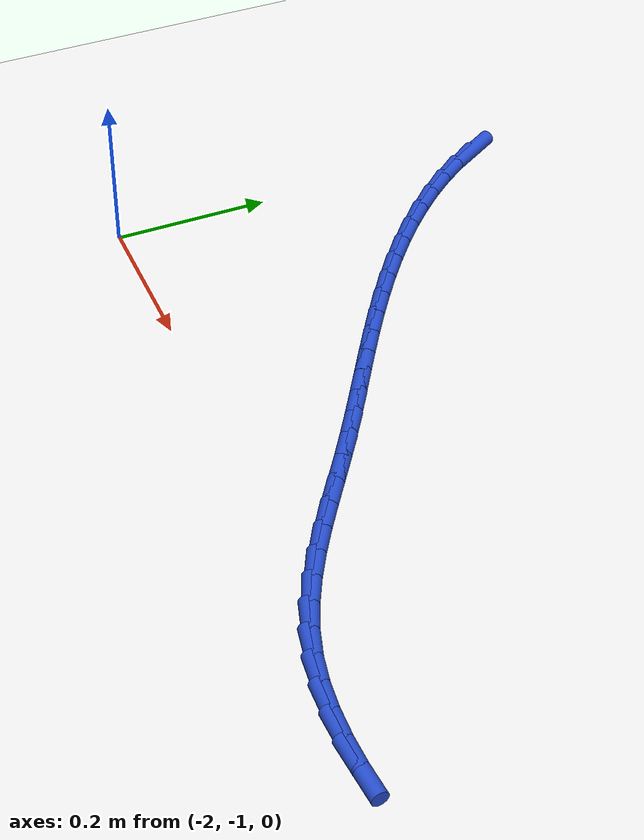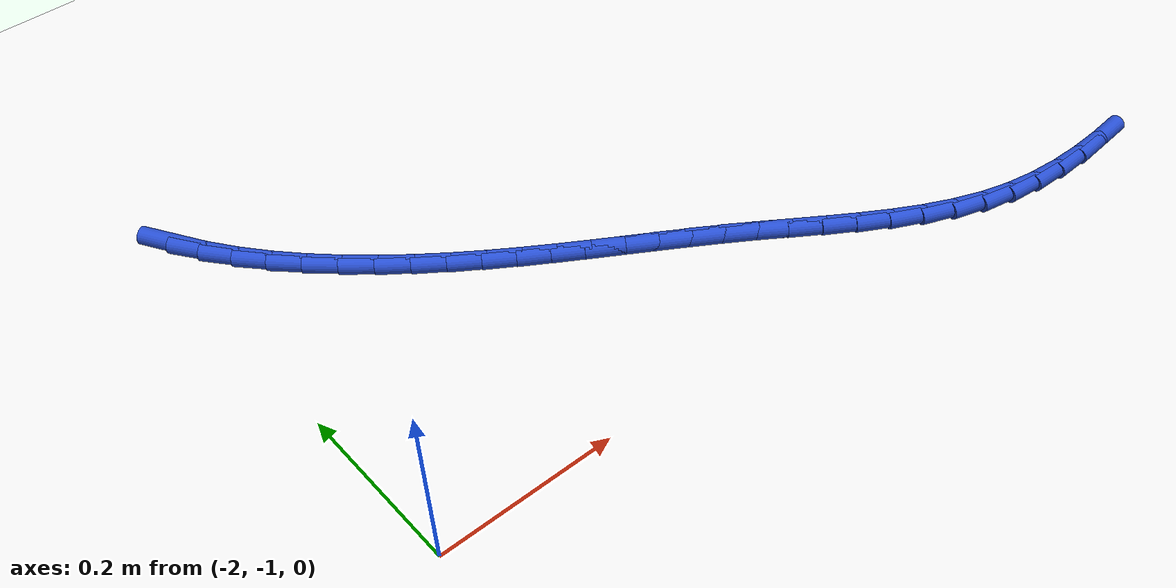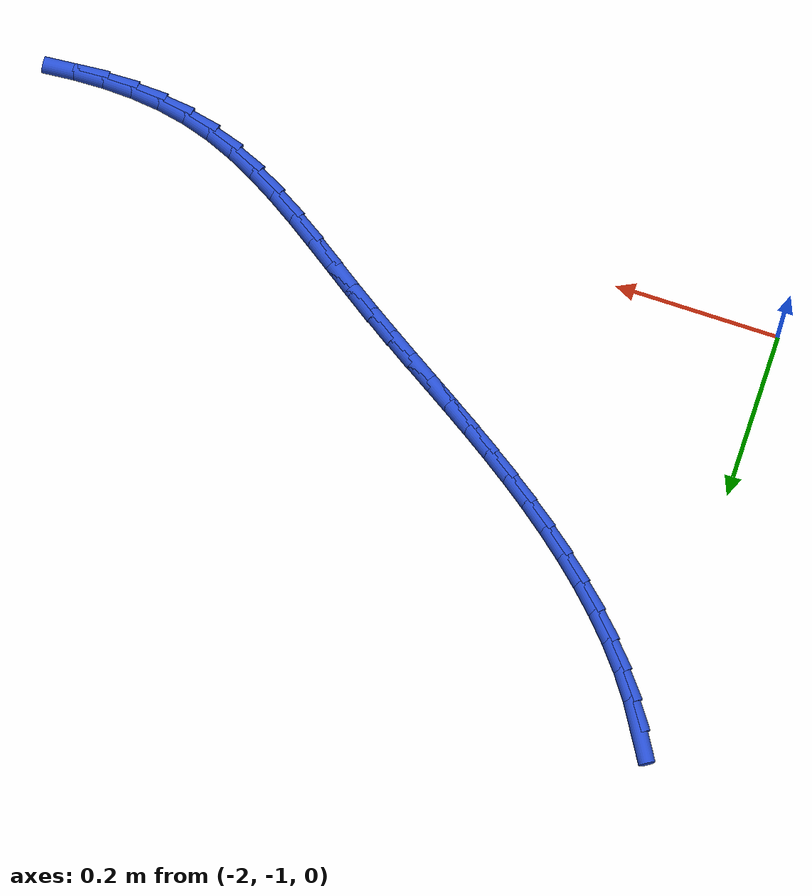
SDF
<sdf version="1.6">
 <world name="default">
  <model name="ground_plane">
   <static>1</static>
   <link name="link">
    <collision name="collision">
     <geometry><plane><normal>0 0 1</normal><size>100 100</size></plane></geometry>
     <surface><friction><ode><mu>100</mu><mu2>50</mu2></ode></friction></surface>
    </collision>
    <visual name="visual">
     <cast_shadows>0</cast_shadows>
     <geometry><plane><normal>0 0 1</normal><size>100 100</size></plane></geometry>
     <material>
      <script><uri>file://media/materials/scripts/gazebo.material</uri><name>Gazebo/WhiteGlow</name></script>
     </material>
    </visual>
   </link>
  </model>
  <model name="line">
   <link name="link_105">
    <pose>-1.9854136381828291 -0.5013025602565664 0.01 0 1.57 -1.0278930306244936</pose>
    <collision name="collision">
     <geometry><cylinder><radius>0.01</radius><length>0.08</length></cylinder></geometry>
    </collision>
    <visual name="visual">
     <material>
      <script><name>Gazebo/Blue</name><uri>file://media/materials/scripts/gazebo.material</uri></script>
     </material>
     <geometry><cylinder><radius>0.01</radius><length>0.08</length></cylinder></geometry>
    </visual>
   </link>
   <link name="link_106">
    <pose>-1.9668358680596336 -0.5320919092841816 0.01 0 1.57 -0.9518600899607216</pose>
    <collision name="collision">
     <geometry><cylinder><radius>0.01</radius><length>0.08</length></cylinder></geometry>
    </collision>
    <visual name="visual">
     <material>
      <script><name>Gazebo/Blue</name><uri>file://media/materials/scripts/gazebo.material</uri></script>
     </material>
     <geometry><cylinder><radius>0.01</radius><length>0.08</length></cylinder></geometry>
    </visual>
   </link>
   <link name="link_107">
    <pose>-1.9456504953854847 -0.5618339349138195 0.01 0 1.57 -0.8850721465943859</pose>
    <collision name="collision">
     <geometry><cylinder><radius>0.01</radius><length>0.08</length></cylinder></geometry>
    </collision>
    <visual name="visual">
     <material>
      <script><name>Gazebo/Blue</name><uri>file://media/materials/scripts/gazebo.material</uri></script>
     </material>
     <geometry><cylinder><radius>0.01</radius><length>0.08</length></cylinder></geometry>
    </visual>
   </link>
   <link name="link_108">
    <pose>-1.9221911971435446 -0.5905067224094889 0.01 0 1.57 -0.8265609908895764</pose>
    <collision name="collision">
     <geometry><cylinder><radius>0.01</radius><length>0.08</length></cylinder></geometry>
    </collision>
    <visual name="visual">
     <material>
      <script><name>Gazebo/Blue</name><uri>file://media/materials/scripts/gazebo.material</uri></script>
     </material>
     <geometry><cylinder><radius>0.01</radius><length>0.08</length></cylinder></geometry>
    </visual>
   </link>
   <link name="link_109">
    <pose>-1.8967916503169737 -0.6180883570351988 0.01 0 1.57 -0.7753460556000099</pose>
    <collision name="collision">
     <geometry><cylinder><radius>0.01</radius><length>0.08</length></cylinder></geometry>
    </collision>
    <visual name="visual">
     <material>
      <script><name>Gazebo/Blue</name><uri>file://media/materials/scripts/gazebo.material</uri></script>
     </material>
     <geometry><cylinder><radius>0.01</radius><length>0.08</length></cylinder></geometry>
    </visual>
   </link>
   <link name="link_110">
    <pose>-1.8697855318889345 -0.6445569240549565 0.01 0 1.57 -0.7305142285117678</pose>
    <collision name="collision">
     <geometry><cylinder><radius>0.01</radius><length>0.08</length></cylinder></geometry>
    </collision>
    <visual name="visual">
     <material>
      <script><name>Gazebo/Blue</name><uri>file://media/materials/scripts/gazebo.material</uri></script>
     </material>
     <geometry><cylinder><radius>0.01</radius><length>0.08</length></cylinder></geometry>
    </visual>
   </link>
   <link name="link_111">
    <pose>-1.841506518842589 -0.6698905087327716 0.01 0 1.57 -0.6912573557724883</pose>
    <collision name="collision">
     <geometry><cylinder><radius>0.01</radius><length>0.08</length></cylinder></geometry>
    </collision>
    <visual name="visual">
     <material>
      <script><name>Gazebo/Blue</name><uri>file://media/materials/scripts/gazebo.material</uri></script>
     </material>
     <geometry><cylinder><radius>0.01</radius><length>0.08</length></cylinder></geometry>
    </visual>
   </link>
   <link name="link_112">
    <pose>-1.812288288161098 -0.6940671963326521 0.01 0 1.57 -0.6568850160171625</pose>
    <collision name="collision">
     <geometry><cylinder><radius>0.01</radius><length>0.08</length></cylinder></geometry>
    </collision>
    <visual name="visual">
     <material>
      <script><name>Gazebo/Blue</name><uri>file://media/materials/scripts/gazebo.material</uri></script>
     </material>
     <geometry><cylinder><radius>0.01</radius><length>0.08</length></cylinder></geometry>
    </visual>
   </link>
   <link name="link_113">
    <pose>-1.7824645168276239 -0.7170650721186071 0.01 0 1.57 -0.6268965585853982</pose>
    <collision name="collision">
     <geometry><cylinder><radius>0.01</radius><length>0.08</length></cylinder></geometry>
    </collision>
    <visual name="visual">
     <material>
      <script><name>Gazebo/Blue</name><uri>file://media/materials/scripts/gazebo.material</uri></script>
     </material>
     <geometry><cylinder><radius>0.01</radius><length>0.08</length></cylinder></geometry>
    </visual>
   </link>
   <link name="link_114">
    <pose>-1.752344121517345 -0.7388834487933059 0.01 0 1.57 -0.6016346239157404</pose>
    <collision name="collision">
     <geometry><cylinder><radius>0.01</radius><length>0.08</length></cylinder></geometry>
    </collision>
    <visual name="visual">
     <material>
      <script><name>Gazebo/Blue</name><uri>file://media/materials/scripts/gazebo.material</uri></script>
     </material>
     <geometry><cylinder><radius>0.01</radius><length>0.08</length></cylinder></geometry>
    </visual>
   </link>
   <link name="link_115">
    <pose>-1.722047456710545 -0.7596832966780854 0.01 0 1.57 -0.58169381471882</pose>
    <collision name="collision">
     <geometry><cylinder><radius>0.01</radius><length>0.08</length></cylinder></geometry>
    </collision>
    <visual name="visual">
     <material>
      <script><name>Gazebo/Blue</name><uri>file://media/materials/scripts/gazebo.material</uri></script>
     </material>
     <geometry><cylinder><radius>0.01</radius><length>0.08</length></cylinder></geometry>
    </visual>
   </link>
   <link name="link_116">
    <pose>-1.6916081337029911 -0.7796999525209777 0.01 0 1.57 -0.5674053096959631</pose>
    <collision name="collision">
     <geometry><cylinder><radius>0.01</radius><length>0.08</length></cylinder></geometry>
    </collision>
    <visual name="visual">
     <material>
      <script><name>Gazebo/Blue</name><uri>file://media/materials/scripts/gazebo.material</uri></script>
     </material>
     <geometry><cylinder><radius>0.01</radius><length>0.08</length></cylinder></geometry>
    </visual>
   </link>
   <link name="link_117">
    <pose>-1.6610593045195015 -0.7991691468109143 0.01 0 1.57 -0.5589919019958683</pose>
    <collision name="collision">
     <geometry><cylinder><radius>0.01</radius><length>0.08</length></cylinder></geometry>
    </collision>
    <visual name="visual">
     <material>
      <script><name>Gazebo/Blue</name><uri>file://media/materials/scripts/gazebo.material</uri></script>
     </material>
     <geometry><cylinder><radius>0.01</radius><length>0.08</length></cylinder></geometry>
    </visual>
   </link>
   <link name="link_118">
    <pose>-1.6304341211848934 -0.8183266100368267 0.01 0 1.57 -0.5565737357466627</pose>
    <collision name="collision">
     <geometry><cylinder><radius>0.01</radius><length>0.08</length></cylinder></geometry>
    </collision>
    <visual name="visual">
     <material>
      <script><name>Gazebo/Blue</name><uri>file://media/materials/scripts/gazebo.material</uri></script>
     </material>
     <geometry><cylinder><radius>0.01</radius><length>0.08</length></cylinder></geometry>
    </visual>
   </link>
   <link name="link_119">
    <pose>-1.5997657357239845 -0.8374080726876458 0.01 0 1.57 -0.5601722358709752</pose>
    <collision name="collision">
     <geometry><cylinder><radius>0.01</radius><length>0.08</length></cylinder></geometry>
    </collision>
    <visual name="visual">
     <material>
      <script><name>Gazebo/Blue</name><uri>file://media/materials/scripts/gazebo.material</uri></script>
     </material>
     <geometry><cylinder><radius>0.01</radius><length>0.08</length></cylinder></geometry>
    </visual>
   </link>
   <link name="link_120">
    <pose>-1.569087300161593 -0.8566492652523034 0.01 0 1.57 -0.5697120417279157</pose>
    <collision name="collision">
     <geometry><cylinder><radius>0.01</radius><length>0.08</length></cylinder></geometry>
    </collision>
    <visual name="visual">
     <material>
      <script><name>Gazebo/Blue</name><uri>file://media/materials/scripts/gazebo.material</uri></script>
     </material>
     <geometry><cylinder><radius>0.01</radius><length>0.08</length></cylinder></geometry>
    </visual>
   </link>
   <link name="link_121">
    <pose>-1.5384319665225372 -0.87628591821973 0.01 0 1.57 -0.5850037995301143</pose>
    <collision name="collision">
     <geometry><cylinder><radius>0.01</radius><length>0.08</length></cylinder></geometry>
    </collision>
    <visual name="visual">
     <material>
      <script><name>Gazebo/Blue</name><uri>file://media/materials/scripts/gazebo.material</uri></script>
     </material>
     <geometry><cylinder><radius>0.01</radius><length>0.08</length></cylinder></geometry>
    </visual>
   </link>
   <link name="link_122">
    <pose>-1.5078327502630178 -0.896553116040738 0.01 0 1.57 -0.6004339481005027</pose>
    <collision name="collision">
     <geometry><cylinder><radius>0.01</radius><length>0.08</length></cylinder></geometry>
    </collision>
    <visual name="visual">
     <material>
      <script><name>Gazebo/Blue</name><uri>file://media/materials/scripts/gazebo.material</uri></script>
     </material>
     <geometry><cylinder><radius>0.01</radius><length>0.08</length></cylinder></geometry>
    </visual>
   </link>
   <link name="link_123">
    <pose>-1.4772782898463133 -0.9174760177104022 0.01 0 1.57 -0.6030787459177006</pose>
    <collision name="collision">
     <geometry><cylinder><radius>0.01</radius><length>0.08</length></cylinder></geometry>
    </collision>
    <visual name="visual">
     <material>
      <script><name>Gazebo/Blue</name><uri>file://media/materials/scripts/gazebo.material</uri></script>
     </material>
     <geometry><cylinder><radius>0.01</radius><length>0.08</length></cylinder></geometry>
    </visual>
   </link>
   <link name="link_124">
    <pose>-1.446649284454447 -0.9385691752331724 0.01 0 1.57 -0.5911952213089904</pose>
    <collision name="collision">
     <geometry><cylinder><radius>0.01</radius><length>0.08</length></cylinder></geometry>
    </collision>
    <visual name="visual">
     <material>
      <script><name>Gazebo/Blue</name><uri>file://media/materials/scripts/gazebo.material</uri></script>
     </material>
     <geometry><cylinder><radius>0.01</radius><length>0.08</length></cylinder></geometry>
    </visual>
   </link>
   <link name="link_125">
    <pose>-1.4158103362239203 -0.9592709935067554 0.01 0 1.57 -0.5645427128679273</pose>
    <collision name="collision">
     <geometry><cylinder><radius>0.01</radius><length>0.08</length></cylinder></geometry>
    </collision>
    <visual name="visual">
     <material>
      <script><name>Gazebo/Blue</name><uri>file://media/materials/scripts/gazebo.material</uri></script>
     </material>
     <geometry><cylinder><radius>0.01</radius><length>0.08</length></cylinder></geometry>
    </visual>
   </link>
   <link name="link_126">
    <pose>-1.3846260472912344 -0.9790198774288584 0.01 0 1.57 -0.52247399020582</pose>
    <collision name="collision">
     <geometry><cylinder><radius>0.01</radius><length>0.08</length></cylinder></geometry>
    </collision>
    <visual name="visual">
     <material>
      <script><name>Gazebo/Blue</name><uri>file://media/materials/scripts/gazebo.material</uri></script>
     </material>
     <geometry><cylinder><radius>0.01</radius><length>0.08</length></cylinder></geometry>
    </visual>
   </link>
   <link name="link_127">
    <pose>-1.3529610197928925 -0.9972542318971876 0.01 0 1.57 -0.4640848692942889</pose>
    <collision name="collision">
     <geometry><cylinder><radius>0.01</radius><length>0.08</length></cylinder></geometry>
    </collision>
    <visual name="visual">
     <material>
      <script><name>Gazebo/Blue</name><uri>file://media/materials/scripts/gazebo.material</uri></script>
     </material>
     <geometry><cylinder><radius>0.01</radius><length>0.08</length></cylinder></geometry>
    </visual>
   </link>
   <link name="link_128">
    <pose>-1.3206798558653958 -1.0134124618094504 0.01 0 1.57 -0.38850370269800427</pose>
    <collision name="collision">
     <geometry><cylinder><radius>0.01</radius><length>0.08</length></cylinder></geometry>
    </collision>
    <visual name="visual">
     <material>
      <script><name>Gazebo/Blue</name><uri>file://media/materials/scripts/gazebo.material</uri></script>
     </material>
     <geometry><cylinder><radius>0.01</radius><length>0.08</length></cylinder></geometry>
    </visual>
   </link>
   <link name="link_129">
    <pose>-1.287647157645246 -1.0269329720633538 0.01 0 1.57 -0.29573864799081356</pose>
    <collision name="collision">
     <geometry><cylinder><radius>0.01</radius><length>0.08</length></cylinder></geometry>
    </collision>
    <visual name="visual">
     <material>
      <script><name>Gazebo/Blue</name><uri>file://media/materials/scripts/gazebo.material</uri></script>
     </material>
     <geometry><cylinder><radius>0.01</radius><length>0.08</length></cylinder></geometry>
    </visual>
   </link>
   <link name="link_130">
    <pose>-1.2537312451116482 -1.0372662434275943 0.01 0 1.57 -0.19821011398455515</pose>
    <collision name="collision">
     <geometry><cylinder><radius>0.01</radius><length>0.08</length></cylinder></geometry>
    </collision>
    <visual name="visual">
     <material>
      <script><name>Gazebo/Blue</name><uri>file://media/materials/scripts/gazebo.material</uri></script>
     </material>
     <geometry><cylinder><radius>0.01</radius><length>0.08</length></cylinder></geometry>
    </visual>
   </link>
   <link name="link_131">
    <pose>-1.2189219958790936 -1.0442575862639583 0.01 0 1.57 -0.11111040387000001</pose>
    <collision name="collision">
     <geometry><cylinder><radius>0.01</radius><length>0.08</length></cylinder></geometry>
    </collision>
    <visual name="visual">
     <material>
      <script><name>Gazebo/Blue</name><uri>file://media/materials/scripts/gazebo.material</uri></script>
     </material>
     <geometry><cylinder><radius>0.01</radius><length>0.08</length></cylinder></geometry>
    </visual>
   </link>
   <link name="link_132">
    <pose>-1.1833550581801249 -1.0482257863656372 0.01 0 1.57 -0.03568959179350622</pose>
    <collision name="collision">
     <geometry><cylinder><radius>0.01</radius><length>0.08</length></cylinder></geometry>
    </collision>
    <visual name="visual">
     <material>
      <script><name>Gazebo/Blue</name><uri>file://media/materials/scripts/gazebo.material</uri></script>
     </material>
     <geometry><cylinder><radius>0.01</radius><length>0.08</length></cylinder></geometry>
    </visual>
   </link>
   <link name="link_133">
    <pose>-1.147174690829785 -1.049517597434032 0.01 0 1.57 0.02830996088665487</pose>
    <collision name="collision">
     <geometry><cylinder><radius>0.01</radius><length>0.08</length></cylinder></geometry>
    </collision>
    <visual name="visual">
     <material>
      <script><name>Gazebo/Blue</name><uri>file://media/materials/scripts/gazebo.material</uri></script>
     </material>
     <geometry><cylinder><radius>0.01</radius><length>0.08</length></cylinder></geometry>
    </visual>
   </link>
   <link name="link_134">
    <pose>-1.1105251526431172 -1.0484797731705424 0.01 0 1.57 0.08151607873679594</pose>
    <collision name="collision">
     <geometry><cylinder><radius>0.01</radius><length>0.08</length></cylinder></geometry>
    </collision>
    <visual name="visual">
     <material>
      <script><name>Gazebo/Blue</name><uri>file://media/materials/scripts/gazebo.material</uri></script>
     </material>
     <geometry><cylinder><radius>0.01</radius><length>0.08</length></cylinder></geometry>
    </visual>
   </link>
  </model>
 </world>
</sdf>
